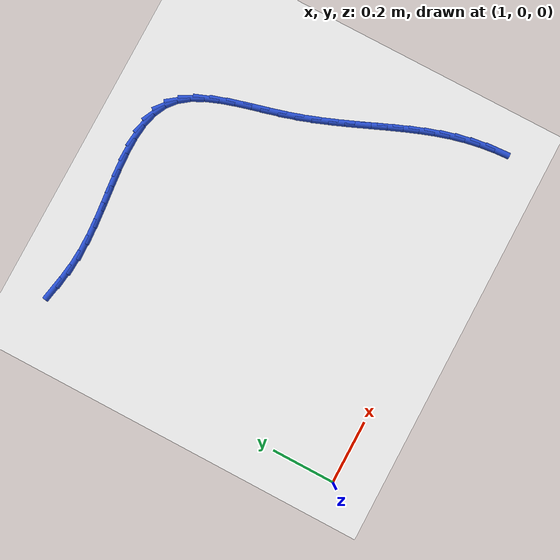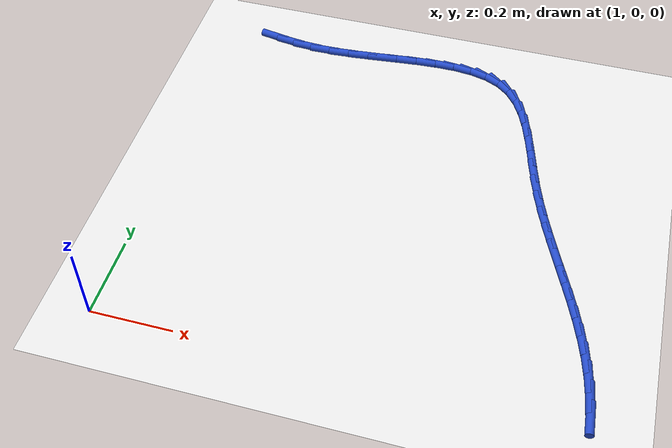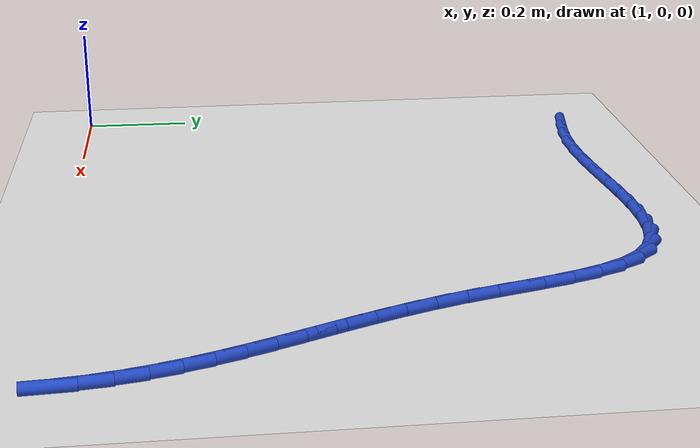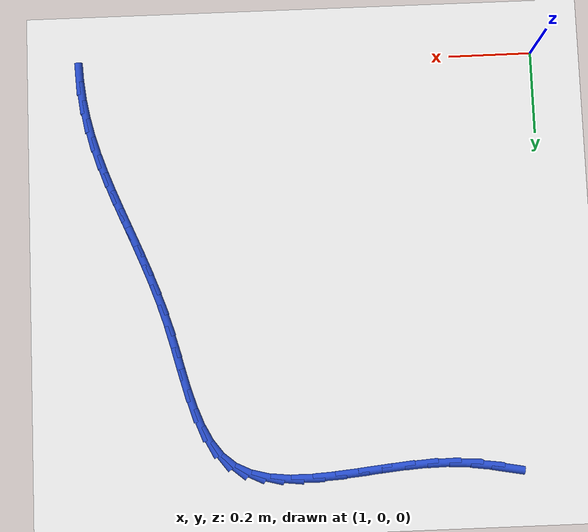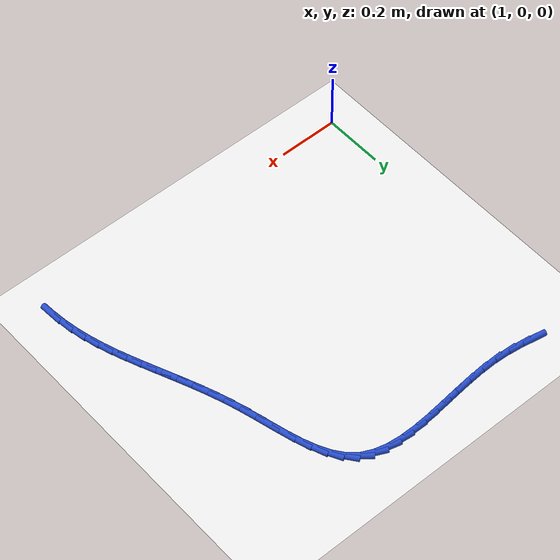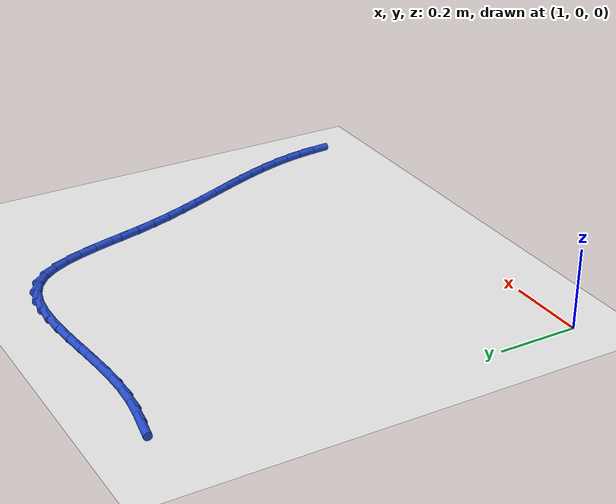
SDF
<sdf version="1.6">
 <world name="default">
  <model name="ground_plane">
   <static>1</static>
   <link name="link">
    <collision name="collision">
     <geometry><plane><normal>0 0 1</normal><size>100 100</size></plane></geometry>
     <surface><friction><ode><mu>100</mu><mu2>50</mu2></ode></friction></surface>
    </collision>
    <visual name="visual">
     <cast_shadows>0</cast_shadows>
     <geometry><plane><normal>0 0 1</normal><size>100 100</size></plane></geometry>
     <material>
      <script><uri>file://media/materials/scripts/gazebo.material</uri><name>Gazebo/WhiteGlow</name></script>
     </material>
    </visual>
   </link>
  </model>
  <model name="line">
   <link name="link_35">
    <pose>1.114416530803299 1.004237294171934 0.01 0 1.57 -0.1826487961973674</pose>
    <collision name="collision">
     <geometry><cylinder><radius>0.01</radius><length>0.08</length></cylinder></geometry>
    </collision>
    <visual name="visual">
     <material>
      <script><name>Gazebo/Blue</name><uri>file://media/materials/scripts/gazebo.material</uri></script>
     </material>
     <geometry><cylinder><radius>0.01</radius><length>0.08</length></cylinder></geometry>
    </visual>
   </link>
   <link name="link_36">
    <pose>1.1629561081984583 0.9952716769454366 0.01 0 1.57 -0.12837101444714635</pose>
    <collision name="collision">
     <geometry><cylinder><radius>0.01</radius><length>0.08</length></cylinder></geometry>
    </collision>
    <visual name="visual">
     <material>
      <script><name>Gazebo/Blue</name><uri>file://media/materials/scripts/gazebo.material</uri></script>
     </material>
     <geometry><cylinder><radius>0.01</radius><length>0.08</length></cylinder></geometry>
    </visual>
   </link>
   <link name="link_37">
    <pose>1.2129770999579457 0.9888149252743372 0.01 0 1.57 -0.0505261361255027</pose>
    <collision name="collision">
     <geometry><cylinder><radius>0.01</radius><length>0.08</length></cylinder></geometry>
    </collision>
    <visual name="visual">
     <material>
      <script><name>Gazebo/Blue</name><uri>file://media/materials/scripts/gazebo.material</uri></script>
     </material>
     <geometry><cylinder><radius>0.01</radius><length>0.08</length></cylinder></geometry>
    </visual>
   </link>
   <link name="link_38">
    <pose>1.2649301799941752 0.9861877008276493 0.01 0 1.57 0.022632750712963754</pose>
    <collision name="collision">
     <geometry><cylinder><radius>0.01</radius><length>0.08</length></cylinder></geometry>
    </collision>
    <visual name="visual">
     <material>
      <script><name>Gazebo/Blue</name><uri>file://media/materials/scripts/gazebo.material</uri></script>
     </material>
     <geometry><cylinder><radius>0.01</radius><length>0.08</length></cylinder></geometry>
    </visual>
   </link>
   <link name="link_39">
    <pose>1.3186483896153882 0.9874036993101006 0.01 0 1.57 0.07114611563243067</pose>
    <collision name="collision">
     <geometry><cylinder><radius>0.01</radius><length>0.08</length></cylinder></geometry>
    </collision>
    <visual name="visual">
     <material>
      <script><name>Gazebo/Blue</name><uri>file://media/materials/scripts/gazebo.material</uri></script>
     </material>
     <geometry><cylinder><radius>0.01</radius><length>0.08</length></cylinder></geometry>
    </visual>
   </link>
   <link name="link_40">
    <pose>1.373411804115698 0.9913064907643587 0.01 0 1.57 0.09759905182260828</pose>
    <collision name="collision">
     <geometry><cylinder><radius>0.01</radius><length>0.08</length></cylinder></geometry>
    </collision>
    <visual name="visual">
     <material>
      <script><name>Gazebo/Blue</name><uri>file://media/materials/scripts/gazebo.material</uri></script>
     </material>
     <geometry><cylinder><radius>0.01</radius><length>0.08</length></cylinder></geometry>
    </visual>
   </link>
   <link name="link_41">
    <pose>1.4284809697761993 0.9966983200906676 0.01 0 1.57 0.10364600065930506</pose>
    <collision name="collision">
     <geometry><cylinder><radius>0.01</radius><length>0.08</length></cylinder></geometry>
    </collision>
    <visual name="visual">
     <material>
      <script><name>Gazebo/Blue</name><uri>file://media/materials/scripts/gazebo.material</uri></script>
     </material>
     <geometry><cylinder><radius>0.01</radius><length>0.08</length></cylinder></geometry>
    </visual>
   </link>
   <link name="link_42">
    <pose>1.4831164328779862 1.0023814321892728 0.01 0 1.57 0.08910932639259764</pose>
    <collision name="collision">
     <geometry><cylinder><radius>0.01</radius><length>0.08</length></cylinder></geometry>
    </collision>
    <visual name="visual">
     <material>
      <script><name>Gazebo/Blue</name><uri>file://media/materials/scripts/gazebo.material</uri></script>
     </material>
     <geometry><cylinder><radius>0.01</radius><length>0.08</length></cylinder></geometry>
    </visual>
   </link>
   <link name="link_43">
    <pose>1.5365787397021542 1.007158071960419 0.01 0 1.57 0.051795108233766894</pose>
    <collision name="collision">
     <geometry><cylinder><radius>0.01</radius><length>0.08</length></cylinder></geometry>
    </collision>
    <visual name="visual">
     <material>
      <script><name>Gazebo/Blue</name><uri>file://media/materials/scripts/gazebo.material</uri></script>
     </material>
     <geometry><cylinder><radius>0.01</radius><length>0.08</length></cylinder></geometry>
    </visual>
   </link>
   <link name="link_44">
    <pose>1.588128436529798 1.009830484304351 0.01 0 1.57 -0.012874557681891226</pose>
    <collision name="collision">
     <geometry><cylinder><radius>0.01</radius><length>0.08</length></cylinder></geometry>
    </collision>
    <visual name="visual">
     <material>
      <script><name>Gazebo/Blue</name><uri>file://media/materials/scripts/gazebo.material</uri></script>
     </material>
     <geometry><cylinder><radius>0.01</radius><length>0.08</length></cylinder></geometry>
    </visual>
   </link>
   <link name="link_45">
    <pose>1.6370260696420118 1.009200914121314 0.01 0 1.57 -0.11224313600365854</pose>
    <collision name="collision">
     <geometry><cylinder><radius>0.01</radius><length>0.08</length></cylinder></geometry>
    </collision>
    <visual name="visual">
     <material>
      <script><name>Gazebo/Blue</name><uri>file://media/materials/scripts/gazebo.material</uri></script>
     </material>
     <geometry><cylinder><radius>0.01</radius><length>0.08</length></cylinder></geometry>
    </visual>
   </link>
   <link name="link_46">
    <pose>1.682532185319891 1.0040716063115531 0.01 0 1.57 -0.25593544317708505</pose>
    <collision name="collision">
     <geometry><cylinder><radius>0.01</radius><length>0.08</length></cylinder></geometry>
    </collision>
    <visual name="visual">
     <material>
      <script><name>Gazebo/Blue</name><uri>file://media/materials/scripts/gazebo.material</uri></script>
     </material>
     <geometry><cylinder><radius>0.01</radius><length>0.08</length></cylinder></geometry>
    </visual>
   </link>
   <link name="link_47">
    <pose>1.72390732984453 0.9932448057753132 0.01 0 1.57 -0.4519584518205847</pose>
    <collision name="collision">
     <geometry><cylinder><radius>0.01</radius><length>0.08</length></cylinder></geometry>
    </collision>
    <visual name="visual">
     <material>
      <script><name>Gazebo/Blue</name><uri>file://media/materials/scripts/gazebo.material</uri></script>
     </material>
     <geometry><cylinder><radius>0.01</radius><length>0.08</length></cylinder></geometry>
    </visual>
   </link>
   <link name="link_48">
    <pose>1.7604120494970235 0.9755227574128389 0.01 0 1.57 -0.6951003165758325</pose>
    <collision name="collision">
     <geometry><cylinder><radius>0.01</radius><length>0.08</length></cylinder></geometry>
    </collision>
    <visual name="visual">
     <material>
      <script><name>Gazebo/Blue</name><uri>file://media/materials/scripts/gazebo.material</uri></script>
     </material>
     <geometry><cylinder><radius>0.01</radius><length>0.08</length></cylinder></geometry>
    </visual>
   </link>
   <link name="link_49">
    <pose>1.7913287196056 0.9497398938738197 0.01 0 1.57 -0.9276363154186914</pose>
    <collision name="collision">
     <geometry><cylinder><radius>0.01</radius><length>0.08</length></cylinder></geometry>
    </collision>
    <visual name="visual">
     <material>
      <script><name>Gazebo/Blue</name><uri>file://media/materials/scripts/gazebo.material</uri></script>
     </material>
     <geometry><cylinder><radius>0.01</radius><length>0.08</length></cylinder></geometry>
    </visual>
   </link>
   <link name="link_50">
    <pose>1.8167127292382912 0.9158704855855974 0.01 0 1.57 -1.0956185462248145</pose>
    <collision name="collision">
     <geometry><cylinder><radius>0.01</radius><length>0.08</length></cylinder></geometry>
    </collision>
    <visual name="visual">
     <material>
      <script><name>Gazebo/Blue</name><uri>file://media/materials/scripts/gazebo.material</uri></script>
     </material>
     <geometry><cylinder><radius>0.01</radius><length>0.08</length></cylinder></geometry>
    </visual>
   </link>
   <link name="link_51">
    <pose>1.8375819747790825 0.8753080561446405 0.01 0 1.57 -1.2069062894530147</pose>
    <collision name="collision">
     <geometry><cylinder><radius>0.01</radius><length>0.08</length></cylinder></geometry>
    </collision>
    <visual name="visual">
     <material>
      <script><name>Gazebo/Blue</name><uri>file://media/materials/scripts/gazebo.material</uri></script>
     </material>
     <geometry><cylinder><radius>0.01</radius><length>0.08</length></cylinder></geometry>
    </visual>
   </link>
   <link name="link_52">
    <pose>1.8550146523595699 0.829535043388871 0.01 0 1.57 -1.2751939807241766</pose>
    <collision name="collision">
     <geometry><cylinder><radius>0.01</radius><length>0.08</length></cylinder></geometry>
    </collision>
    <visual name="visual">
     <material>
      <script><name>Gazebo/Blue</name><uri>file://media/materials/scripts/gazebo.material</uri></script>
     </material>
     <geometry><cylinder><radius>0.01</radius><length>0.08</length></cylinder></geometry>
    </visual>
   </link>
   <link name="link_53">
    <pose>1.8700889581113471 0.7800338851562114 0.01 0 1.57 -1.3102847632019683</pose>
    <collision name="collision">
     <geometry><cylinder><radius>0.01</radius><length>0.08</length></cylinder></geometry>
    </collision>
    <visual name="visual">
     <material>
      <script><name>Gazebo/Blue</name><uri>file://media/materials/scripts/gazebo.material</uri></script>
     </material>
     <geometry><cylinder><radius>0.01</radius><length>0.08</length></cylinder></geometry>
    </visual>
   </link>
   <link name="link_54">
    <pose>1.8838830881660105 0.7282870192845833 0.01 0 1.57 -1.3175075034846024</pose>
    <collision name="collision">
     <geometry><cylinder><radius>0.01</radius><length>0.08</length></cylinder></geometry>
    </collision>
    <visual name="visual">
     <material>
      <script><name>Gazebo/Blue</name><uri>file://media/materials/scripts/gazebo.material</uri></script>
     </material>
     <geometry><cylinder><radius>0.01</radius><length>0.08</length></cylinder></geometry>
    </visual>
   </link>
   <link name="link_55">
    <pose>1.8974752386551543 0.6757768836119082 0.01 0 1.57 -1.2983949188859885</pose>
    <collision name="collision">
     <geometry><cylinder><radius>0.01</radius><length>0.08</length></cylinder></geometry>
    </collision>
    <visual name="visual">
     <material>
      <script><name>Gazebo/Blue</name><uri>file://media/materials/scripts/gazebo.material</uri></script>
     </material>
     <geometry><cylinder><radius>0.01</radius><length>0.08</length></cylinder></geometry>
    </visual>
   </link>
   <link name="link_56">
    <pose>1.911942998328892 0.623985195552956 0.01 0 1.57 -1.2600994673681414</pose>
    <collision name="collision">
     <geometry><cylinder><radius>0.01</radius><length>0.08</length></cylinder></geometry>
    </collision>
    <visual name="visual">
     <material>
      <script><name>Gazebo/Blue</name><uri>file://media/materials/scripts/gazebo.material</uri></script>
     </material>
     <geometry><cylinder><radius>0.01</radius><length>0.08</length></cylinder></geometry>
    </visual>
   </link>
   <link name="link_57">
    <pose>1.9280038055478947 0.5739664934145499 0.01 0 1.57 -1.2252017930950996</pose>
    <collision name="collision">
     <geometry><cylinder><radius>0.01</radius><length>0.08</length></cylinder></geometry>
    </collision>
    <visual name="visual">
     <material>
      <script><name>Gazebo/Blue</name><uri>file://media/materials/scripts/gazebo.material</uri></script>
     </material>
     <geometry><cylinder><radius>0.01</radius><length>0.08</length></cylinder></geometry>
    </visual>
   </link>
   <link name="link_58">
    <pose>1.9454077956750537 0.5256279847111204 0.01 0 1.57 -1.1983984559771772</pose>
    <collision name="collision">
     <geometry><cylinder><radius>0.01</radius><length>0.08</length></cylinder></geometry>
    </collision>
    <visual name="visual">
     <material>
      <script><name>Gazebo/Blue</name><uri>file://media/materials/scripts/gazebo.material</uri></script>
     </material>
     <geometry><cylinder><radius>0.01</radius><length>0.08</length></cylinder></geometry>
    </visual>
   </link>
   <link name="link_59">
    <pose>1.9637443824174403 0.4786862428898467 0.01 0 1.57 -1.1804117195987573</pose>
    <collision name="collision">
     <geometry><cylinder><radius>0.01</radius><length>0.08</length></cylinder></geometry>
    </collision>
    <visual name="visual">
     <material>
      <script><name>Gazebo/Blue</name><uri>file://media/materials/scripts/gazebo.material</uri></script>
     </material>
     <geometry><cylinder><radius>0.01</radius><length>0.08</length></cylinder></geometry>
    </visual>
   </link>
   <link name="link_60">
    <pose>1.982602979482125 0.43285784139791 0.01 0 1.57 -1.1718343408304202</pose>
    <collision name="collision">
     <geometry><cylinder><radius>0.01</radius><length>0.08</length></cylinder></geometry>
    </collision>
    <visual name="visual">
     <material>
      <script><name>Gazebo/Blue</name><uri>file://media/materials/scripts/gazebo.material</uri></script>
     </material>
     <geometry><cylinder><radius>0.01</radius><length>0.08</length></cylinder></geometry>
    </visual>
   </link>
   <link name="link_61">
    <pose>2.0015730005761783 0.3878593536824897 0.01 0 1.57 -1.1731488563914427</pose>
    <collision name="collision">
     <geometry><cylinder><radius>0.01</radius><length>0.08</length></cylinder></geometry>
    </collision>
    <visual name="visual">
     <material>
      <script><name>Gazebo/Blue</name><uri>file://media/materials/scripts/gazebo.material</uri></script>
     </material>
     <geometry><cylinder><radius>0.01</radius><length>0.08</length></cylinder></geometry>
    </visual>
   </link>
   <link name="link_62">
    <pose>2.0202438594066705 0.34340735319076665 0.01 0 1.57 -1.1847319859341918</pose>
    <collision name="collision">
     <geometry><cylinder><radius>0.01</radius><length>0.08</length></cylinder></geometry>
    </collision>
    <visual name="visual">
     <material>
      <script><name>Gazebo/Blue</name><uri>file://media/materials/scripts/gazebo.material</uri></script>
     </material>
     <geometry><cylinder><radius>0.01</radius><length>0.08</length></cylinder></geometry>
    </visual>
   </link>
   <link name="link_63">
    <pose>2.0382049696806734 0.2992184133699205 0.01 0 1.57 -1.2068344536608886</pose>
    <collision name="collision">
     <geometry><cylinder><radius>0.01</radius><length>0.08</length></cylinder></geometry>
    </collision>
    <visual name="visual">
     <material>
      <script><name>Gazebo/Blue</name><uri>file://media/materials/scripts/gazebo.material</uri></script>
     </material>
     <geometry><cylinder><radius>0.01</radius><length>0.08</length></cylinder></geometry>
    </visual>
   </link>
   <link name="link_64">
    <pose>2.0550457451052577 0.25500910766713214 0.01 0 1.57 -1.2395299507272333</pose>
    <collision name="collision">
     <geometry><cylinder><radius>0.01</radius><length>0.08</length></cylinder></geometry>
    </collision>
    <visual name="visual">
     <material>
      <script><name>Gazebo/Blue</name><uri>file://media/materials/scripts/gazebo.material</uri></script>
     </material>
     <geometry><cylinder><radius>0.01</radius><length>0.08</length></cylinder></geometry>
    </visual>
   </link>
   <link name="link_65">
    <pose>2.070355599387493 0.21049600952958136 0.01 0 1.57 -1.2826330570810893</pose>
    <collision name="collision">
     <geometry><cylinder><radius>0.01</radius><length>0.08</length></cylinder></geometry>
    </collision>
    <visual name="visual">
     <material>
      <script><name>Gazebo/Blue</name><uri>file://media/materials/scripts/gazebo.material</uri></script>
     </material>
     <geometry><cylinder><radius>0.01</radius><length>0.08</length></cylinder></geometry>
    </visual>
   </link>
   <link name="link_66">
    <pose>2.0837239462344512 0.16539569240444818 0.01 0 1.57 -1.3355964652234475</pose>
    <collision name="collision">
     <geometry><cylinder><radius>0.01</radius><length>0.08</length></cylinder></geometry>
    </collision>
    <visual name="visual">
     <material>
      <script><name>Gazebo/Blue</name><uri>file://media/materials/scripts/gazebo.material</uri></script>
     </material>
     <geometry><cylinder><radius>0.01</radius><length>0.08</length></cylinder></geometry>
    </visual>
   </link>
   <link name="link_67">
    <pose>2.094740199353203 0.11942472973891344 0.01 0 1.57 -1.395858333342795</pose>
    <collision name="collision">
     <geometry><cylinder><radius>0.01</radius><length>0.08</length></cylinder></geometry>
    </collision>
    <visual name="visual">
     <material>
      <script><name>Gazebo/Blue</name><uri>file://media/materials/scripts/gazebo.material</uri></script>
     </material>
     <geometry><cylinder><radius>0.01</radius><length>0.08</length></cylinder></geometry>
    </visual>
   </link>
   <link name="link_68">
    <pose>2.10305732266308 0.07236745115457911 0.01 0 1.57 -1.4551276186068844</pose>
    <collision name="collision">
     <geometry><cylinder><radius>0.01</radius><length>0.08</length></cylinder></geometry>
    </collision>
    <visual name="visual">
     <material>
      <script><name>Gazebo/Blue</name><uri>file://media/materials/scripts/gazebo.material</uri></script>
     </material>
     <geometry><cylinder><radius>0.01</radius><length>0.08</length></cylinder></geometry>
    </visual>
   </link>
   <link name="link_69">
    <pose>2.1086377239169805 0.02433811011774764 0.01 0 1.57 -1.511421228773499</pose>
    <collision name="collision">
     <geometry><cylinder><radius>0.01</radius><length>0.08</length></cylinder></geometry>
    </collision>
    <visual name="visual">
     <material>
      <script><name>Gazebo/Blue</name><uri>file://media/materials/scripts/gazebo.material</uri></script>
     </material>
     <geometry><cylinder><radius>0.01</radius><length>0.08</length></cylinder></geometry>
    </visual>
   </link>
  </model>
 </world>
</sdf>
